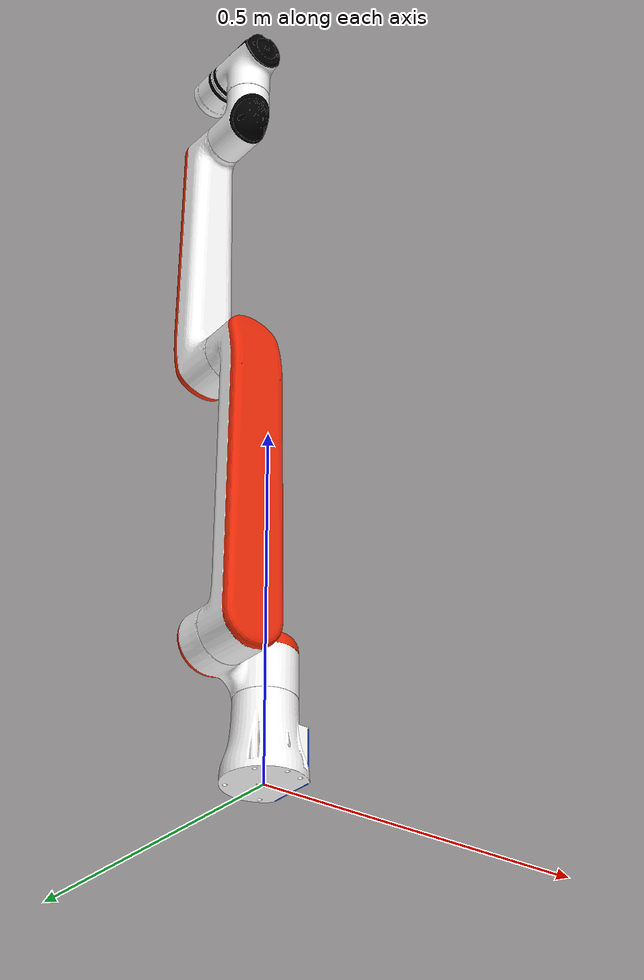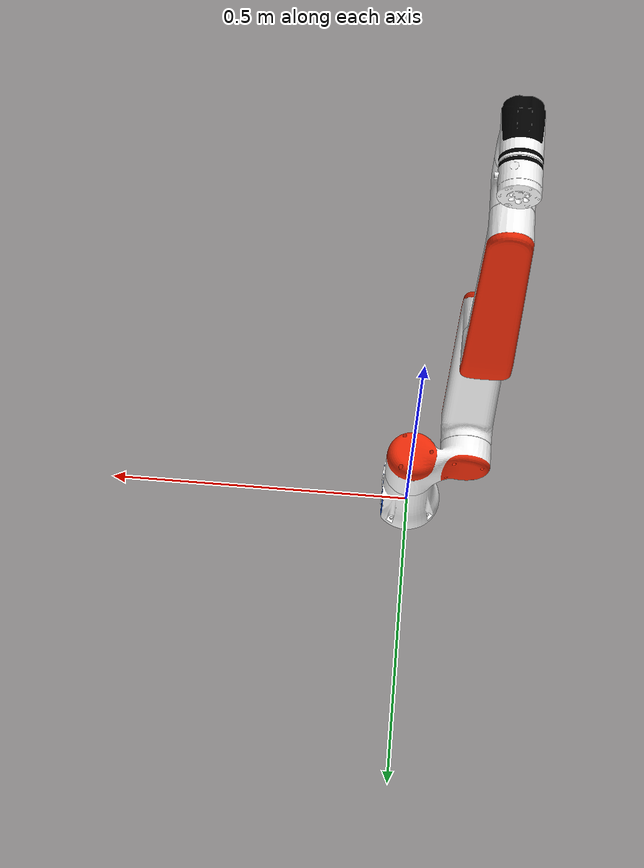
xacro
<?xml version='1.0' encoding='utf-8'?>
<robot name="rm_eco63_description">
  <link name="base_root" />
  <joint name="base_root_joint" type="fixed">
    <origin rpy="0 0 0" xyz="0 0 0" />
    <parent link="base_root" />
    <child link="base_link" />
  </joint>
  <link name="base_link">
    <inertial>
      <origin rpy="0 0 0" xyz="-0.0819699961303711 -0.0464753726622393 0.526722271495911" />
      <mass value="8.97974481667473" />
      <inertia ixx="0.862297666639592" ixy="-0.00170110773340804" ixz="0.0134260863948258" iyy="0.853404080505364" iyz="-0.0335323790979435" izz="0.021909948868005" />
    </inertial>
    <collision>
      <origin rpy="0 0 0" xyz="0 0 0" />
      <geometry>
        <mesh filename="package://rm_description/meshes/rm_eco63_arm/base_link.STL" />
      </geometry>
    </collision>
    <visual>
      <origin xyz="0 0 0" rpy="0 0 0" />
      <geometry>
        <mesh filename="package://rm_description/meshes/dae/base/base_v1.0.dae" />
      </geometry>
    </visual>
  </link>
  <link name="Link1">
    <inertial>
      <origin rpy="0 0 0" xyz="-0.0309493055609114 -0.0012728567226139 -0.00524336672353307" />
      <mass value="0.656374618338142" />
      <inertia ixx="0.000538922068295209" ixy="-6.49558484347273E-05" ixz="0.000104084843141859" iyy="0.00162201405585815" iyz="6.13990176963193E-06" izz="0.00151559483136641" />
    </inertial>
    <collision>
      <origin rpy="0 0 0" xyz="0 0 0" />
      <geometry>
        <mesh filename="package://rm_description/meshes/rm_eco63_arm/Link1.STL" />
      </geometry>
    </collision>
    <visual>
      <origin xyz="0 0 0" rpy="0 0 0" />
      <geometry>
        <mesh filename="package://rm_description/meshes/dae/eco63/link1_v1.0.dae" />
      </geometry>
    </visual>
  </link>
  <joint name="joint1" type="revolute">
    <origin rpy="0 0 0" xyz="0 0 0.1625" />
    <parent link="base_link" />
    <child link="Link1" />
    <axis xyz="0 0 1" />
    <limit effort="60" lower="-3.105" upper="3.105" velocity="3.14" />
  </joint>
  <link name="Link2">
    <inertial>
      <origin rpy="0 0 0" xyz="0.194682247033962 -1.86346038127949E-07 0.0708742731440949" />
      <mass value="5.26262523683375" />
      <inertia ixx="0.00404170032131906" ixy="-5.65174393111021E-07" ixz="0.00121807022294723" iyy="0.109727764384232" iyz="-2.72124756899763E-09" izz="0.110681578185881" />
    </inertial>
    <collision>
      <origin rpy="0 0 0" xyz="0 0 0" />
      <geometry>
        <mesh filename="package://rm_description/meshes/rm_eco63_arm/Link2.STL" />
      </geometry>
    </collision>
    <visual>
      <origin xyz="0 0 0" rpy="0 0 0" />
      <geometry>
        <mesh filename="package://rm_description/meshes/dae/eco63/link2_v1.0.dae" />
      </geometry>
    </visual>
  </link>
  <joint name="joint2" type="revolute">
    <origin rpy="1.5708 -1.5708 0" xyz="-0.086 0 0" />
    <parent link="Link1" />
    <child link="Link2" />
    <axis xyz="0 0 -1" />
    <limit effort="60" lower="-3.105" upper="2.355" velocity="3.14" />
  </joint>
  <link name="Link3">
    <inertial>
      <origin rpy="0 0 0" xyz="0.179310475039839 1.86928912626616E-09 0.0308638630867258" />
      <mass value="1.3509329667983" />
      <inertia ixx="0.000796925531981305" ixy="-2.89740446981148E-08" ixz="-0.000607432295339128" iyy="0.0219803140031169" iyz="1.84171394643915E-08" izz="0.022157190260175" />
    </inertial>
    <collision>
      <origin rpy="0 0 0" xyz="0 0 0" />
      <geometry>
        <mesh filename="package://rm_description/meshes/rm_eco63_arm/Link3.STL" />
      </geometry>
    </collision>
    <visual>
      <origin xyz="0 0 0" rpy="0 0 0" />
      <geometry>
        <mesh filename="package://rm_description/meshes/dae/eco63/link3_v1.0.dae" />
      </geometry>
    </visual>
  </link>
  <joint name="joint3" type="revolute">
    <origin rpy="3.1416 -0.0087266 0" xyz="0.41 0 0" />
    <parent link="Link2" />
    <child link="Link3" />
    <axis xyz=" 0 0 1" />
    <limit effort="30" lower="-2.93" upper="2.756" velocity="3.14" />
  </joint>
  <link name="Link4">
    <inertial>
      <origin rpy="0 0 0" xyz="1.18737948139047E-06 -0.00995387687025817 0.0129236518197595" />
      <mass value="0.733001235394853" />
      <inertia ixx="0.000641256799113762" ixy="7.16323347889126E-09" ixz="-6.76890724051393E-09" iyy="0.000512473473605366" iyz="-0.000109077537111131" izz="0.000460316607732565" />
    </inertial>
    <collision>
      <origin rpy="0 0 0" xyz="0 0 0" />
      <geometry>
        <mesh filename="package://rm_description/meshes/rm_eco63_arm/Link4.STL" />
      </geometry>
    </collision>
    <visual>
      <origin xyz="0 0 0" rpy="0 0 0" />
      <geometry>
        <mesh filename="package://rm_description/meshes/dae/eco63/link4_v1.0.dae" />
      </geometry>
    </visual>
  </link>
  <joint name="joint4" type="revolute">
    <origin rpy="-0.0087266 0 1.5708" xyz="0.38049 0 -0.054981" />
    <parent link="Link3" />
    <child link="Link4" />
    <axis xyz="0 0 1" />
    <limit effort="10" lower="-3.105" upper="3.105" velocity="3.14" />
  </joint>
  <link name="Link5">
    <inertial>
      <origin rpy="0 0 0" xyz="1.10373835336686E-06 0.00366306859871773 -0.0136222948606266" />
      <mass value="0.911747774463918" />
      <inertia ixx="0.000797250089831515" ixy="-3.0783066224908E-08" ixz="-1.86945083800088E-09" iyy="0.000572176795709541" iyz="-0.000145598908387624" izz="0.000625883738000052" />
    </inertial>
    <collision>
      <origin rpy="0 0 0" xyz="0 0 0" />
      <geometry>
        <mesh filename="package://rm_description/meshes/rm_eco63_arm/Link5.STL" />
      </geometry>
    </collision>
    <visual>
      <origin xyz="0 0 0" rpy="0 0 0" />
      <geometry>
        <mesh filename="package://rm_description/meshes/dae/eco63/link5_v1.0.dae" />
      </geometry>
    </visual>
  </link>
  <joint name="joint5" type="revolute">
    <origin rpy="1.5708 0 0" xyz="0 -0.11 -0.0006" />
    <parent link="Link4" />
    <child link="Link5" />
    <axis xyz="0 0 1" />
    <limit effort="10" lower="-3.105" upper="3.105" velocity="3.14" />
  </joint>
  <link name="Link6">
    <inertial>
      <origin rpy="0 0 0" xyz="0.000502798417250983 1.40039216558474E-05 -0.0166588848846901" />
      <mass value="0.151764173288042" />
      <inertia ixx="5.92991887697562E-05" ixy="-3.55096210035366E-08" ixz="9.38773298614362E-07" iyy="6.14480379976492E-05" iyz="-2.92670703712805E-08" izz="7.77928386927577E-05" />
    </inertial>
    <collision>
      <origin rpy="0 0 0" xyz="0 0 0" />
      <geometry>
        <mesh filename="package://rm_description/meshes/rm_eco63_arm/Link6_6fb.STL" />
      </geometry>
    </collision>
    <visual>
      <origin xyz="0 0 0" rpy="0 0 0" />
      <geometry>
        <mesh filename="package://rm_description/meshes/dae/eco63/link6Fb_v1.0.dae" />
      </geometry>
    </visual>
  </link>
  <joint name="joint6" type="revolute">
    <origin rpy="-1.5708 0 0" xyz="0 0.0967 0" />
    <parent link="Link5" />
    <child link="Link6" />
    <axis xyz="0 0 1" />
    <limit effort="10" lower="-6.28" upper="6.28" velocity="3.14" />
  </joint>
</robot>
